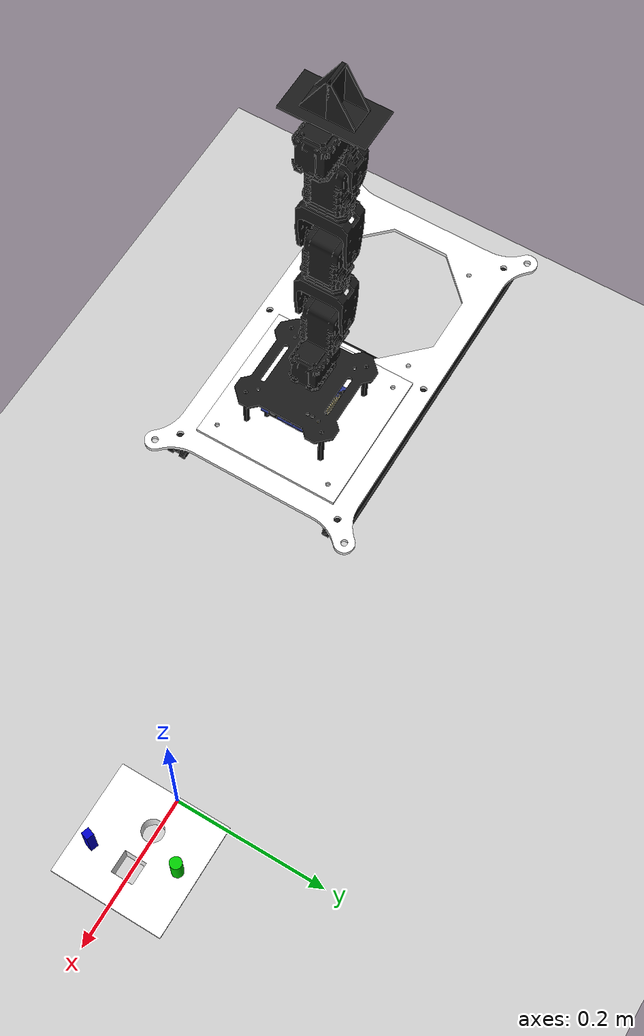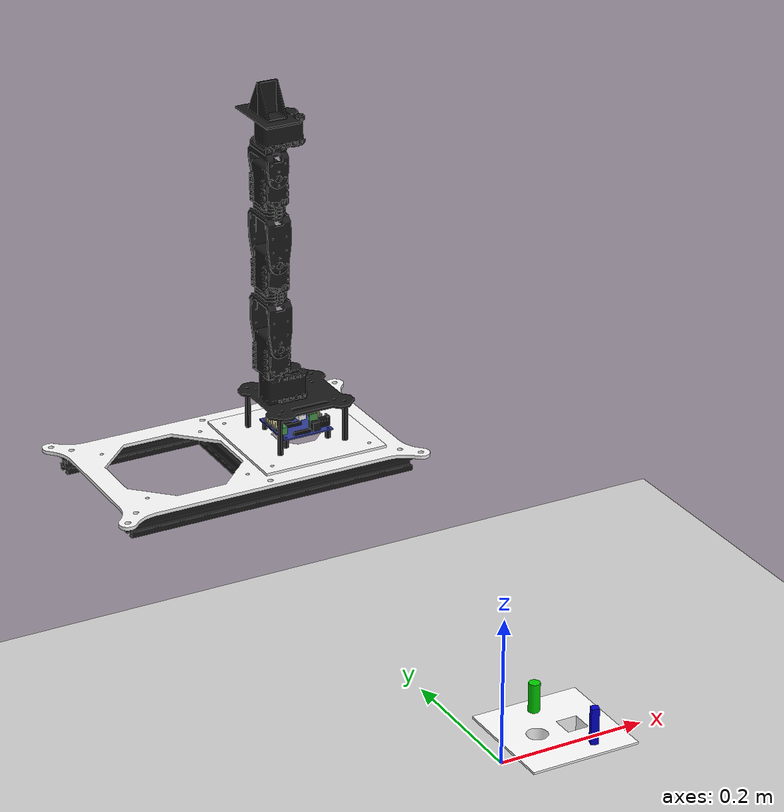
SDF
<sdf version="1.9">
 <world name="rover_peg_in_hole">
  <plugin filename="ignition-gazebo-physics-system" name="ignition::gazebo::systems::Physics"/>
  <physics name="dart_physics" type="dart">
   <max_step_size>0.002</max_step_size>
   <real_time_factor>1.0</real_time_factor>
  </physics>
  <gravity>0.0 0.0 -3.721</gravity>
  <scene><ambient>0 0 0</ambient><grid>false</grid></scene>
  <plugin filename="ignition-gazebo-user-commands-system" name="ignition::gazebo::systems::UserCommands"/>
  <plugin filename="ignition-gazebo-scene-broadcaster-system" name="ignition::gazebo::systems::SceneBroadcaster"/>
  <light type="directional" name="sun">
   <pose>0 0 10 0 0 0</pose>
   <diffuse>0.8 0.8 0.8 1</diffuse>
   <specular>0.2 0.2 0.2 1</specular>
   <attenuation>
    <range>1000</range>
    <constant>2.5</constant>
    <linear>0.01</linear>
    <quadratic>0.001</quadratic>
   </attenuation>
   <direction>0.25 -0.5 -0.5</direction>
  </light>
  <model name="ground">
   <static>true</static>
   <link name="ground_link">
    <collision name="ground_collision"><geometry><plane><size>2.0 2.0</size></plane></geometry></collision>
    <visual name="ground_visual"><geometry><plane><size>2.0 2.0</size></plane></geometry></visual>
   </link>
  </model>
  <include>
   <pose>-0.35 0 0.485 0 0 3.1416</pose>
   <uri>model://phantomx_pincher</uri>
   <plugin filename="ignition-gazebo-detachable-joint-system" name="ignition::gazebo::systems::DetachableJoint">
    <parent_link>phantomx_pincher_base_link</parent_link>
    <child_model>module_cover</child_model>
    <child_link>module_cover_link</child_link>
   </plugin>
  </include>
  <model name="module_cover">
   <pose relative_to="phantomx_pincher">0.075 0 0.024 0 0 0</pose>
   <link name="module_cover_link">
    <collision name="module_cover_collision">
     <geometry><mesh><uri>../assets/module_holes.stl</uri></mesh></geometry>
    </collision>
    <visual name="module_cover_visual">
     <geometry><mesh><uri>../assets/module_holes.stl</uri></mesh></geometry>
     <material><diffuse>1.0 1.0 1.0</diffuse><specular>0.1 0.1 0.1</specular></material>
    </visual>
    <inertial>
     <pose>0.0 0.0 -0.005 0 0 0</pose>
     <mass>0.04</mass>
     <inertia>
      <ixx>0.00000866667</ixx>
      <iyy>0.00007334667</iyy>
      <izz>0.00008134667</izz>
      <ixy>0.0</ixy>
      <ixz>0.0</ixz>
      <iyz>0.0</iyz>
     </inertia>
    </inertial>
   </link>
  </model>
  <model name="peg1">
   <static>false</static>
   <pose relative_to="phantomx_pincher">0.075 0.05 0.047 0 0 0</pose>
   <link name="peg1_link">
    <collision name="peg1_collision">
     <geometry><cylinder><length>0.04</length><radius>0.0075</radius></cylinder></geometry>
    </collision>
    <visual name="peg1_visual">
     <geometry><cylinder><length>0.04</length><radius>0.0075</radius></cylinder></geometry>
     <material><diffuse>0 0.8 0</diffuse><specular>0.2 0.2 0.2</specular></material>
    </visual>
    <inertial>
     <mass>0.015</mass>
     <inertia>
      <ixx>0.0000025859375</ixx>
      <iyy>0.0000025859375</iyy>
      <izz>0.0000011718750</izz>
      <ixy>0.0</ixy>
      <ixz>0.0</ixz>
      <iyz>0.0</iyz>
     </inertia>
    </inertial>
   </link>
  </model>
  <model name="peg2">
   <static>false</static>
   <pose relative_to="phantomx_pincher">0.1 -0.05 0.052 0 0 -0.32175</pose>
   <link name="peg2_link">
    <collision name="peg2_collision"><geometry><box><size>0.01 0.01 0.05</size></box></geometry></collision>
    <visual name="peg2_visual">
     <geometry><box><size>0.01 0.01 0.05</size></box></geometry>
     <material><diffuse>0 0 0.8</diffuse><specular>0.2 0.2 0.2</specular></material>
    </visual>
    <inertial>
     <mass>0.02</mass>
     <inertia>
      <ixx>0.00000520833</ixx>
      <iyy>0.00000520833</iyy>
      <izz>0.00000208333</izz>
      <ixy>0.0</ixy>
      <ixz>0.0</ixz>
      <iyz>0.0</iyz>
     </inertia>
    </inertial>
   </link>
  </model>
 </world>
</sdf>

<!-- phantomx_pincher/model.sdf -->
<sdf version='1.9'>
  <model name='phantomx_pincher'>
    <link name='phantomx_pincher_base_link'>
      <inertial>
        <pose>-0.01572806230265987 2.004116747357118e-05 0.02729107304682029 0 0 0</pose>
        <mass>0.78139802400654235</mass>
        <inertia>
          <ixx>0.0071530032060590169</ixx>
          <ixy>1.3358730550969931e-06</ixy>
          <ixz>0.00040468059007655802</ixz>
          <iyy>0.0046873478338086859</iyy>
          <iyz>-3.9397789863881159e-07</iyz>
          <izz>0.0108279546657306</izz>
        </inertia>
      </inertial>
      <collision name='phantomx_pincher_base_link_fixed_joint_lump__phantomx_pincher_task_board_link_collision'>
        <pose>0 0 0 0 0 0</pose>
        <geometry>
          <mesh>
            <scale>1 1 1</scale>
            <uri>meshes/collision/task_board.stl</uri>
          </mesh>
        </geometry>
        <surface>
          <contact>
            <ode/>
          </contact>
          <friction>
            <ode>
              <mu>1</mu>
              <mu2>1</mu2>
            </ode>
          </friction>
        </surface>
      </collision>
      <collision name='phantomx_pincher_base_link_fixed_joint_lump__phantomx_pincher_task_board_mount_link_collision_1'>
        <pose>-0.075 0 0.0255 0 0 1.570796326794896</pose>
        <geometry>
          <box>
            <size>0.148 0.148 0.003</size>
          </box>
        </geometry>
        <surface>
          <contact>
            <ode/>
          </contact>
          <friction>
            <ode>
              <mu>1</mu>
              <mu2>1</mu2>
            </ode>
          </friction>
        </surface>
      </collision>
      <collision name='phantomx_pincher_base_link_fixed_joint_lump__phantomx_pincher_base_mount_link_collision_2'>
        <pose>-0.075 0 0.051 0 0 1.570796326794896</pose>
        <geometry>
          <box>
            <size>0.104 0.104 0.048</size>
          </box>
        </geometry>
        <surface>
          <contact>
            <ode/>
          </contact>
          <friction>
            <ode>
              <mu>1</mu>
              <mu2>1</mu2>
            </ode>
          </friction>
        </surface>
      </collision>
      <collision name='phantomx_pincher_base_link_fixed_joint_lump__phantomx_pincher_arm_shoulder_pan_servo_link_collision_3'>
        <pose>-0.059 -3.469446951953614e-18 0.091 1.570796326794896 0 1.570796326794896</pose>
        <geometry>
          <box>
            <size>0.032 0.038 0.05</size>
          </box>
        </geometry>
        <surface>
          <contact>
            <ode/>
          </contact>
          <friction>
            <ode>
              <mu>1</mu>
              <mu2>1</mu2>
            </ode>
          </friction>
        </surface>
      </collision>
      <visual name='phantomx_pincher_base_link_fixed_joint_lump__phantomx_pincher_task_board_link_visual'>
        <pose>0 0 0 0 0 0</pose>
        <geometry>
          <mesh>
            <scale>1 1 1</scale>
            <uri>meshes/visual/task_board.dae</uri>
          </mesh>
        </geometry>
      </visual>
      <visual name='phantomx_pincher_base_link_fixed_joint_lump__phantomx_pincher_task_board_mount_link_visual_1'>
        <pose>-0.075 0 0.024 0 0 1.570796326794896</pose>
        <geometry>
          <mesh>
            <scale>1 1 1</scale>
            <uri>meshes/visual/task_board_module_phantomx_pincher_mount.dae</uri>
          </mesh>
        </geometry>
      </visual>
      <visual name='phantomx_pincher_base_link_fixed_joint_lump__phantomx_pincher_base_mount_link_visual_2'>
        <pose>-0.075 0 0.027 0 0 1.570796326794896</pose>
        <geometry>
          <mesh>
            <scale>1 1 1</scale>
            <uri>meshes/visual/phantomx_pincher_mount.dae</uri>
          </mesh>
        </geometry>
      </visual>
      <visual name='phantomx_pincher_base_link_fixed_joint_lump__phantomx_pincher_arm_shoulder_pan_servo_link_visual_3'>
        <pose>-0.0455 -6.938893903907228e-18 0.091 1.570796326794896 0 1.570796326794896</pose>
        <geometry>
          <mesh>
            <scale>1 1 1</scale>
            <uri>meshes/visual/ax12.dae</uri>
          </mesh>
        </geometry>
      </visual>
    </link>
    <joint name='phantomx_pincher_arm_shoulder_pan_joint' type='revolute'>
      <pose relative_to='phantomx_pincher_base_link'>-0.0455 -3.469446951953614e-18 0.11 -3.141592653589793 2.220446049250313e-16 -3.141592653589793</pose>
      <parent>phantomx_pincher_base_link</parent>
      <child>phantomx_pincher_arm_shoulder_pan_link</child>
      <axis>
        <xyz>0 0 -1</xyz>
        <limit>
          <lower>-2.617993877991494</lower>
          <upper>2.617993877991494</upper>
          <effort>30</effort>
          <velocity>1.570796326794897</velocity>
        </limit>
        <dynamics>
          <damping>1.3999999999999999</damping>
          <friction>0.02</friction>
          <spring_reference>0</spring_reference>
          <spring_stiffness>0</spring_stiffness>
        </dynamics>
      </axis>
      <physics>
        <ode>
          <limit>
            <cfm>0</cfm>
            <erp>0.20000000000000001</erp>
          </limit>
        </ode>
      </physics>
    </joint>
    <link name='phantomx_pincher_arm_shoulder_pan_link'>
      <pose relative_to='phantomx_pincher_arm_shoulder_pan_joint'>0 0 0 0 0 0</pose>
      <inertial>
        <pose>5.595287355839478e-07 0.0003919568807741019 -0.0205493913639223 0 0 0</pose>
        <mass>0.087772482279434863</mass>
        <inertia>
          <ixx>2.633487857526346e-05</ixx>
          <ixy>6.8175816151448447e-10</ixy>
          <ixz>-2.069705364080512e-10</ixz>
          <iyy>2.2601091776010151e-05</iyy>
          <iyz>-3.0157456879133362e-07</iyz>
          <izz>1.3864477057815019e-05</izz>
        </inertia>
      </inertial>
      <collision name='phantomx_pincher_arm_shoulder_pan_link_collision'>
        <pose>0 0 -0.0045 0 0 0</pose>
        <geometry>
          <box>
            <size>0.025 0.038 0.009</size>
          </box>
        </geometry>
        <surface>
          <contact>
            <ode/>
          </contact>
          <friction>
            <ode>
              <mu>1</mu>
              <mu2>1</mu2>
            </ode>
          </friction>
        </surface>
      </collision>
      <collision name='phantomx_pincher_arm_shoulder_pan_link_fixed_joint_lump__phantomx_pincher_arm_shoulder_lift_servo_link_collision_1'>
        <pose>-1.653273178848927e-18 0 -0.02150000000000001 3.141592653589793 1.224646799147353e-16 3.141592653589793</pose>
        <geometry>
          <box>
            <size>0.032 0.038 0.05</size>
          </box>
        </geometry>
        <surface>
          <contact>
            <ode/>
          </contact>
          <friction>
            <ode>
              <mu>1</mu>
              <mu2>1</mu2>
            </ode>
          </friction>
        </surface>
      </collision>
      <visual name='phantomx_pincher_arm_shoulder_pan_link_visual'>
        <pose>0 0 0 0 0 0</pose>
        <geometry>
          <mesh>
            <scale>1 1 1</scale>
            <uri>meshes/visual/f3.dae</uri>
          </mesh>
        </geometry>
      </visual>
      <visual name='phantomx_pincher_arm_shoulder_pan_link_fixed_joint_lump__phantomx_pincher_arm_shoulder_lift_servo_link_visual_1'>
        <pose>0 0 -0.035 3.141592653589793 1.224646799147353e-16 3.141592653589793</pose>
        <geometry>
          <mesh>
            <scale>1 1 1</scale>
            <uri>meshes/visual/ax12.dae</uri>
          </mesh>
        </geometry>
      </visual>
    </link>
    <joint name='phantomx_pincher_arm_shoulder_lift_joint' type='revolute'>
      <pose relative_to='phantomx_pincher_arm_shoulder_pan_link'>0 0 -0.035 3.141592653589793 1.224646799147353e-16 3.141592653589793</pose>
      <parent>phantomx_pincher_arm_shoulder_pan_link</parent>
      <child>phantomx_pincher_arm_shoulder_lift_link</child>
      <axis>
        <xyz>0 1 0</xyz>
        <limit>
          <lower>-2.0943951023931948</lower>
          <upper>2.0943951023931948</upper>
          <effort>30</effort>
          <velocity>1.570796326794897</velocity>
        </limit>
        <dynamics>
          <damping>1.3999999999999999</damping>
          <friction>0.02</friction>
          <spring_reference>0</spring_reference>
          <spring_stiffness>0</spring_stiffness>
        </dynamics>
      </axis>
      <physics>
        <ode>
          <limit>
            <cfm>0</cfm>
            <erp>0.20000000000000001</erp>
          </limit>
        </ode>
      </physics>
    </joint>
    <link name='phantomx_pincher_arm_shoulder_lift_link'>
      <pose relative_to='phantomx_pincher_arm_shoulder_lift_joint'>0 0 0 0 0 0</pose>
      <inertial>
        <pose>-0.0001213773559064778 0.0002858868570510085 0.07133476832835256 0 0 0</pose>
        <mass>0.1235269029539826</mass>
        <inertia>
          <ixx>0.00011126590019944989</ixx>
          <ixy>-3.4505658476539801e-09</ixy>
          <ixz>4.0295345044288871e-07</ixz>
          <iyy>9.9172419902998133e-05</iyy>
          <iyz>-1.483690008628516e-07</iyz>
          <izz>2.7139002304225952e-05</izz>
        </inertia>
      </inertial>
      <collision name='phantomx_pincher_arm_shoulder_lift_link_collision'>
        <pose>0 0 0.0215 0 0 0</pose>
        <geometry>
          <box>
            <size>0.028 0.0485 0.065</size>
          </box>
        </geometry>
        <surface>
          <contact>
            <ode/>
          </contact>
          <friction>
            <ode>
              <mu>1</mu>
              <mu2>1</mu2>
            </ode>
          </friction>
        </surface>
      </collision>
      <collision name='phantomx_pincher_arm_shoulder_lift_link_fixed_joint_lump__phantomx_pincher_arm_shoulder_F10_0_link_collision_1'>
        <pose>0 0 0.0545 0 0 0</pose>
        <geometry>
          <box>
            <size>0.025 0.038 0.004</size>
          </box>
        </geometry>
        <surface>
          <contact>
            <ode/>
          </contact>
          <friction>
            <ode>
              <mu>1</mu>
              <mu2>1</mu2>
            </ode>
          </friction>
        </surface>
      </collision>
      <collision name='phantomx_pincher_arm_shoulder_lift_link_fixed_joint_lump__phantomx_pincher_arm_shoulder_F10_1_link_collision_2'>
        <pose>0 0 0.0585 0 0 0</pose>
        <geometry>
          <box>
            <size>0.025 0.038 0.004</size>
          </box>
        </geometry>
        <surface>
          <contact>
            <ode/>
          </contact>
          <friction>
            <ode>
              <mu>1</mu>
              <mu2>1</mu2>
            </ode>
          </friction>
        </surface>
      </collision>
      <collision name='phantomx_pincher_arm_shoulder_lift_link_fixed_joint_lump__phantomx_pincher_arm_shoulder_F10_2_link_collision_3'>
        <pose>0 0 0.0625 0 0 0</pose>
        <geometry>
          <box>
            <size>0.025 0.038 0.004</size>
          </box>
        </geometry>
        <surface>
          <contact>
            <ode/>
          </contact>
          <friction>
            <ode>
              <mu>1</mu>
              <mu2>1</mu2>
            </ode>
          </friction>
        </surface>
      </collision>
      <collision name='phantomx_pincher_arm_shoulder_lift_link_fixed_joint_lump__phantomx_pincher_arm_shoulder_F3_0_link_collision_4'>
        <pose>-5.510910596163089e-19 0 0.06900000000000001 3.141592653589793 1.224646799147353e-16 3.141592653589793</pose>
        <geometry>
          <box>
            <size>0.025 0.038 0.009</size>
          </box>
        </geometry>
        <surface>
          <contact>
            <ode/>
          </contact>
          <friction>
            <ode>
              <mu>1</mu>
              <mu2>1</mu2>
            </ode>
          </friction>
        </surface>
      </collision>
      <collision name='phantomx_pincher_arm_shoulder_lift_link_fixed_joint_lump__phantomx_pincher_arm_elbow_flex_servo_link_collision_5'>
        <pose>-9.797174393178831e-19 0 0.08600000000000001 0 -2.449293598294706e-16 0</pose>
        <geometry>
          <box>
            <size>0.032 0.038 0.05</size>
          </box>
        </geometry>
        <surface>
          <contact>
            <ode/>
          </contact>
          <friction>
            <ode>
              <mu>1</mu>
              <mu2>1</mu2>
            </ode>
          </friction>
        </surface>
      </collision>
      <visual name='phantomx_pincher_arm_shoulder_lift_link_visual'>
        <pose>0 0 0 0 0 0</pose>
        <geometry>
          <mesh>
            <scale>1 1 1</scale>
            <uri>meshes/visual/f4.dae</uri>
          </mesh>
        </geometry>
      </visual>
      <visual name='phantomx_pincher_arm_shoulder_lift_link_fixed_joint_lump__phantomx_pincher_arm_shoulder_F10_0_link_visual_1'>
        <pose>0 0 0.0545 0 0 0</pose>
        <geometry>
          <mesh>
            <scale>1 1 1</scale>
            <uri>meshes/visual/f10.dae</uri>
          </mesh>
        </geometry>
      </visual>
      <visual name='phantomx_pincher_arm_shoulder_lift_link_fixed_joint_lump__phantomx_pincher_arm_shoulder_F10_1_link_visual_2'>
        <pose>0 0 0.0585 0 0 0</pose>
        <geometry>
          <mesh>
            <scale>1 1 1</scale>
            <uri>meshes/visual/f10.dae</uri>
          </mesh>
        </geometry>
      </visual>
      <visual name='phantomx_pincher_arm_shoulder_lift_link_fixed_joint_lump__phantomx_pincher_arm_shoulder_F10_2_link_visual_3'>
        <pose>0 0 0.0625 0 0 0</pose>
        <geometry>
          <mesh>
            <scale>1 1 1</scale>
            <uri>meshes/visual/f10.dae</uri>
          </mesh>
        </geometry>
      </visual>
      <visual name='phantomx_pincher_arm_shoulder_lift_link_fixed_joint_lump__phantomx_pincher_arm_shoulder_F3_0_link_visual_4'>
        <pose>0 0 0.0645 3.141592653589793 1.224646799147353e-16 3.141592653589793</pose>
        <geometry>
          <mesh>
            <scale>1 1 1</scale>
            <uri>meshes/visual/f3.dae</uri>
          </mesh>
        </geometry>
      </visual>
      <visual name='phantomx_pincher_arm_shoulder_lift_link_fixed_joint_lump__phantomx_pincher_arm_elbow_flex_servo_link_visual_5'>
        <pose>-4.286263797015737e-18 0 0.09950000000000001 0 -2.449293598294706e-16 0</pose>
        <geometry>
          <mesh>
            <scale>1 1 1</scale>
            <uri>meshes/visual/ax12.dae</uri>
          </mesh>
        </geometry>
      </visual>
    </link>
    <joint name='phantomx_pincher_arm_elbow_flex_joint' type='revolute'>
      <pose relative_to='phantomx_pincher_arm_shoulder_lift_link'>-4.286263797015737e-18 0 0.09950000000000001 0 -2.449293598294706e-16 0</pose>
      <parent>phantomx_pincher_arm_shoulder_lift_link</parent>
      <child>phantomx_pincher_arm_elbow_flex_link</child>
      <axis>
        <xyz>0 1 0</xyz>
        <limit>
          <lower>-2.4260076602721181</lower>
          <upper>2.4260076602721181</upper>
          <effort>30</effort>
          <velocity>1.570796326794897</velocity>
        </limit>
        <dynamics>
          <damping>1.3999999999999999</damping>
          <friction>0.02</friction>
          <spring_reference>0</spring_reference>
          <spring_stiffness>0</spring_stiffness>
        </dynamics>
      </axis>
      <physics>
        <ode>
          <limit>
            <cfm>0</cfm>
            <erp>0.20000000000000001</erp>
          </limit>
        </ode>
      </physics>
    </joint>
    <link name='phantomx_pincher_arm_elbow_flex_link'>
      <pose relative_to='phantomx_pincher_arm_elbow_flex_joint'>0 0 0 0 0 0</pose>
      <inertial>
        <pose>-0.0001213773559064778 0.0002858868570510085 0.07133476832835256 0 0 0</pose>
        <mass>0.1235269029539826</mass>
        <inertia>
          <ixx>0.00011126590019944989</ixx>
          <ixy>-3.4505658476539801e-09</ixy>
          <ixz>4.0295345044288871e-07</ixz>
          <iyy>9.9172419902998133e-05</iyy>
          <iyz>-1.483690008628516e-07</iyz>
          <izz>2.7139002304225952e-05</izz>
        </inertia>
      </inertial>
      <collision name='phantomx_pincher_arm_elbow_flex_link_collision'>
        <pose>0 0 0.0215 0 0 0</pose>
        <geometry>
          <box>
            <size>0.028 0.0485 0.065</size>
          </box>
        </geometry>
        <surface>
          <contact>
            <ode/>
          </contact>
          <friction>
            <ode>
              <mu>1</mu>
              <mu2>1</mu2>
            </ode>
          </friction>
        </surface>
      </collision>
      <collision name='phantomx_pincher_arm_elbow_flex_link_fixed_joint_lump__phantomx_pincher_arm_elbow_F10_0_link_collision_1'>
        <pose>0 0 0.0545 0 0 0</pose>
        <geometry>
          <box>
            <size>0.025 0.038 0.004</size>
          </box>
        </geometry>
        <surface>
          <contact>
            <ode/>
          </contact>
          <friction>
            <ode>
              <mu>1</mu>
              <mu2>1</mu2>
            </ode>
          </friction>
        </surface>
      </collision>
      <collision name='phantomx_pincher_arm_elbow_flex_link_fixed_joint_lump__phantomx_pincher_arm_elbow_F10_1_link_collision_2'>
        <pose>0 0 0.0585 0 0 0</pose>
        <geometry>
          <box>
            <size>0.025 0.038 0.004</size>
          </box>
        </geometry>
        <surface>
          <contact>
            <ode/>
          </contact>
          <friction>
            <ode>
              <mu>1</mu>
              <mu2>1</mu2>
            </ode>
          </friction>
        </surface>
      </collision>
      <collision name='phantomx_pincher_arm_elbow_flex_link_fixed_joint_lump__phantomx_pincher_arm_elbow_F10_2_link_collision_3'>
        <pose>0 0 0.0625 0 0 0</pose>
        <geometry>
          <box>
            <size>0.025 0.038 0.004</size>
          </box>
        </geometry>
        <surface>
          <contact>
            <ode/>
          </contact>
          <friction>
            <ode>
              <mu>1</mu>
              <mu2>1</mu2>
            </ode>
          </friction>
        </surface>
      </collision>
      <collision name='phantomx_pincher_arm_elbow_flex_link_fixed_joint_lump__phantomx_pincher_arm_elbow_F3_0_link_collision_4'>
        <pose>-5.510910596163089e-19 0 0.06900000000000001 3.141592653589793 1.224646799147353e-16 3.141592653589793</pose>
        <geometry>
          <box>
            <size>0.025 0.038 0.009</size>
          </box>
        </geometry>
        <surface>
          <contact>
            <ode/>
          </contact>
          <friction>
            <ode>
              <mu>1</mu>
              <mu2>1</mu2>
            </ode>
          </friction>
        </surface>
      </collision>
      <collision name='phantomx_pincher_arm_elbow_flex_link_fixed_joint_lump__phantomx_pincher_arm_wrist_flex_servo_link_collision_5'>
        <pose>-9.797174393178831e-19 0 0.08600000000000001 0 -2.449293598294706e-16 0</pose>
        <geometry>
          <box>
            <size>0.032 0.038 0.05</size>
          </box>
        </geometry>
        <surface>
          <contact>
            <ode/>
          </contact>
          <friction>
            <ode>
              <mu>1</mu>
              <mu2>1</mu2>
            </ode>
          </friction>
        </surface>
      </collision>
      <visual name='phantomx_pincher_arm_elbow_flex_link_visual'>
        <pose>0 0 0 0 0 0</pose>
        <geometry>
          <mesh>
            <scale>1 1 1</scale>
            <uri>meshes/visual/f4.dae</uri>
          </mesh>
        </geometry>
      </visual>
      <visual name='phantomx_pincher_arm_elbow_flex_link_fixed_joint_lump__phantomx_pincher_arm_elbow_F10_0_link_visual_1'>
        <pose>0 0 0.0545 0 0 0</pose>
        <geometry>
          <mesh>
            <scale>1 1 1</scale>
            <uri>meshes/visual/f10.dae</uri>
          </mesh>
        </geometry>
      </visual>
      <visual name='phantomx_pincher_arm_elbow_flex_link_fixed_joint_lump__phantomx_pincher_arm_elbow_F10_1_link_visual_2'>
        <pose>0 0 0.0585 0 0 0</pose>
        <geometry>
          <mesh>
            <scale>1 1 1</scale>
            <uri>meshes/visual/f10.dae</uri>
          </mesh>
        </geometry>
      </visual>
      <visual name='phantomx_pincher_arm_elbow_flex_link_fixed_joint_lump__phantomx_pincher_arm_elbow_F10_2_link_visual_3'>
        <pose>0 0 0.0625 0 0 0</pose>
        <geometry>
          <mesh>
            <scale>1 1 1</scale>
            <uri>meshes/visual/f10.dae</uri>
          </mesh>
        </geometry>
      </visual>
      <visual name='phantomx_pincher_arm_elbow_flex_link_fixed_joint_lump__phantomx_pincher_arm_elbow_F3_0_link_visual_4'>
        <pose>0 0 0.0645 3.141592653589793 1.224646799147353e-16 3.141592653589793</pose>
        <geometry>
          <mesh>
            <scale>1 1 1</scale>
            <uri>meshes/visual/f3.dae</uri>
          </mesh>
        </geometry>
      </visual>
      <visual name='phantomx_pincher_arm_elbow_flex_link_fixed_joint_lump__phantomx_pincher_arm_wrist_flex_servo_link_visual_5'>
        <pose>-4.286263797015737e-18 0 0.09950000000000001 0 -2.449293598294706e-16 0</pose>
        <geometry>
          <mesh>
            <scale>1 1 1</scale>
            <uri>meshes/visual/ax12.dae</uri>
          </mesh>
        </geometry>
      </visual>
    </link>
    <joint name='phantomx_pincher_arm_wrist_flex_joint' type='revolute'>
      <pose relative_to='phantomx_pincher_arm_elbow_flex_link'>-4.286263797015737e-18 0 0.09950000000000001 0 -2.449293598294706e-16 0</pose>
      <parent>phantomx_pincher_arm_elbow_flex_link</parent>
      <child>phantomx_pincher_arm_wrist_flex_link</child>
      <axis>
        <xyz>0 1 0</xyz>
        <limit>
          <lower>-1.7104226669544429</lower>
          <upper>1.797689129554159</upper>
          <effort>30</effort>
          <velocity>1.570796326794897</velocity>
        </limit>
        <dynamics>
          <damping>1.3999999999999999</damping>
          <friction>0.02</friction>
          <spring_reference>0</spring_reference>
          <spring_stiffness>0</spring_stiffness>
        </dynamics>
      </axis>
      <physics>
        <ode>
          <limit>
            <cfm>0</cfm>
            <erp>0.20000000000000001</erp>
          </limit>
        </ode>
      </physics>
    </joint>
    <link name='phantomx_pincher_arm_wrist_flex_link'>
      <pose relative_to='phantomx_pincher_arm_wrist_flex_joint'>0 0 0 0 0 0</pose>
      <inertial>
        <pose>-0.009295957397333566 -5.451884850855395e-07 0.04302624855224318 0 0 0</pose>
        <mass>0.11408917431946421</mass>
        <inertia>
          <ixx>4.3988924081828188e-05</ixx>
          <ixy>-4.4638748338369969e-10</ixy>
          <ixz>3.4227778571969781e-06</ixz>
          <iyy>5.0046434742980048e-05</iyy>
          <iyz>-5.4239454493520664e-10</iyz>
          <izz>3.8009175095211288e-05</izz>
        </inertia>
      </inertial>
      <collision name='phantomx_pincher_arm_wrist_flex_link_collision'>
        <pose>0 0 0.00775 0 0 0</pose>
        <geometry>
          <box>
            <size>0.025 0.0485 0.0375</size>
          </box>
        </geometry>
        <surface>
          <contact>
            <ode/>
          </contact>
          <friction>
            <ode>
              <mu>1</mu>
              <mu2>1</mu2>
            </ode>
          </friction>
        </surface>
      </collision>
      <collision name='phantomx_pincher_arm_wrist_flex_link_fixed_joint_lump__phantomx_pincher_arm_wrist_F3_0_link_collision_1'>
        <pose>5.510910596163089e-19 6.748919021978358e-35 0.031 3.141592653589793 1.224646799147353e-16 1.224646799147353e-16</pose>
        <geometry>
          <box>
            <size>0.025 0.038 0.009</size>
          </box>
        </geometry>
        <surface>
          <contact>
            <ode/>
          </contact>
          <friction>
            <ode>
              <mu>1</mu>
              <mu2>1</mu2>
            </ode>
          </friction>
        </surface>
      </collision>
      <collision name='phantomx_pincher_arm_wrist_flex_link_fixed_joint_lump__phantomx_pincher_gripper_servo_link_collision_2'>
        <pose>-0.0135 -4.255358392814137e-18 0.0455 1.570796326794897 -1.665334536937735e-16 1.570796326794897</pose>
        <geometry>
          <box>
            <size>0.032 0.038 0.05</size>
          </box>
        </geometry>
        <surface>
          <contact>
            <ode/>
          </contact>
          <friction>
            <ode>
              <mu>1</mu>
              <mu2>1</mu2>
            </ode>
          </friction>
        </surface>
      </collision>
      <collision name='phantomx_pincher_arm_wrist_flex_link_fixed_joint_lump__phantomx_pincher_gripper_finger_base_link_collision_3'>
        <pose>1.184210884806328e-18 -6.938893903907228e-18 0.06449999999999999 0 -1.570796326794897 -6.283185307179586</pose>
        <geometry>
          <box>
            <size>0.002 0.075 0.04</size>
          </box>
        </geometry>
        <surface>
          <contact>
            <ode/>
          </contact>
          <friction>
            <ode>
              <mu>1</mu>
              <mu2>1</mu2>
            </ode>
          </friction>
        </surface>
      </collision>
      <visual name='phantomx_pincher_arm_wrist_flex_link_visual'>
        <pose>0 0 0 0 0 0</pose>
        <geometry>
          <mesh>
            <scale>1 1 1</scale>
            <uri>meshes/visual/f2.dae</uri>
          </mesh>
        </geometry>
      </visual>
      <visual name='phantomx_pincher_arm_wrist_flex_link_fixed_joint_lump__phantomx_pincher_arm_wrist_F3_0_link_visual_1'>
        <pose>0 0 0.0265 3.141592653589793 1.224646799147353e-16 1.224646799147353e-16</pose>
        <geometry>
          <mesh>
            <scale>1 1 1</scale>
            <uri>meshes/visual/f3.dae</uri>
          </mesh>
        </geometry>
      </visual>
      <visual name='phantomx_pincher_arm_wrist_flex_link_fixed_joint_lump__phantomx_pincher_gripper_servo_link_visual_2'>
        <pose>2.326828918379971e-18 2.84954358705753e-34 0.0455 1.570796326794897 -1.665334536937735e-16 1.570796326794897</pose>
        <geometry>
          <mesh>
            <scale>1 1 1</scale>
            <uri>meshes/visual/ax12.dae</uri>
          </mesh>
        </geometry>
      </visual>
      <visual name='phantomx_pincher_arm_wrist_flex_link_fixed_joint_lump__phantomx_pincher_gripper_finger_base_link_visual_3'>
        <pose>1.184210884806328e-18 -6.938893903907228e-18 0.06449999999999999 0 -1.570796326794897 -6.283185307179586</pose>
        <geometry>
          <mesh>
            <scale>1 1 1</scale>
            <uri>meshes/visual/gripper_base.dae</uri>
          </mesh>
        </geometry>
      </visual>
    </link>
    <joint name='phantomx_pincher_gripper_finger1_joint' type='prismatic'>
      <pose relative_to='phantomx_pincher_arm_wrist_flex_link'>-1.366750967786769e-18 0.01149999999999998 0.08349999999999999 -1.915538118220197e-16 -1.570092458683776e-16 1.570796326794897</pose>
      <parent>phantomx_pincher_arm_wrist_flex_link</parent>
      <child>phantomx_pincher_gripper_finger1_link</child>
      <axis>
        <xyz>1 0 0</xyz>
        <limit>
          <lower>0.001</lower>
          <upper>0.015800000000000002</upper>
          <effort>30</effort>
          <velocity>0.01</velocity>
        </limit>
        <dynamics>
          <damping>1.8</damping>
          <friction>0.059999999999999998</friction>
          <spring_reference>0</spring_reference>
          <spring_stiffness>0</spring_stiffness>
        </dynamics>
      </axis>
      <physics>
        <ode>
          <limit>
            <cfm>0</cfm>
            <erp>0.20000000000000001</erp>
          </limit>
        </ode>
      </physics>
    </joint>
    <link name='phantomx_pincher_gripper_finger1_link'>
      <pose relative_to='phantomx_pincher_gripper_finger1_joint'>0 0 0 0 0 0</pose>
      <inertial>
        <pose>-0.00607194 -4.42132e-19 -0.00471261 0 0 0</pose>
        <mass>0.0098432567432967123</mass>
        <inertia>
          <ixx>1.8229100836948671e-06</ixx>
          <ixy>-2.7975028993735179e-23</ixy>
          <ixz>3.498974201392864e-07</ixz>
          <iyy>1.5955459106765571e-06</iyy>
          <iyz>4.7709447971282439e-23</iyz>
          <izz>1.0262210845211419e-06</izz>
        </inertia>
      </inertial>
      <collision name='phantomx_pincher_gripper_finger1_link_collision'>
        <pose>0 0 0 0 0 0</pose>
        <geometry>
          <mesh>
            <scale>1 1 1</scale>
            <uri>meshes/collision/finger.stl</uri>
          </mesh>
        </geometry>
        <surface>
          <contact>
            <ode/>
          </contact>
          <friction>
            <ode>
              <mu>1</mu>
              <mu2>1</mu2>
            </ode>
          </friction>
        </surface>
      </collision>
      <visual name='phantomx_pincher_gripper_finger1_link_visual'>
        <pose>0 0 0 0 0 0</pose>
        <geometry>
          <mesh>
            <scale>1 1 1</scale>
            <uri>meshes/visual/finger.dae</uri>
          </mesh>
        </geometry>
      </visual>
    </link>
    <joint name='phantomx_pincher_gripper_finger2_joint' type='prismatic'>
      <pose relative_to='phantomx_pincher_arm_wrist_flex_link'>-1.152148543713068e-18 -0.01150000000000001 0.08349999999999999 3.454456595364222e-17 1.570092458683775e-16 -1.570796326794896</pose>
      <parent>phantomx_pincher_arm_wrist_flex_link</parent>
      <child>phantomx_pincher_gripper_finger2_link</child>
      <axis>
        <xyz>1 0 0</xyz>
        <limit>
          <lower>0.001</lower>
          <upper>0.015800000000000002</upper>
          <effort>30</effort>
          <velocity>0.01</velocity>
        </limit>
        <dynamics>
          <damping>1.8</damping>
          <friction>0.059999999999999998</friction>
          <spring_reference>0</spring_reference>
          <spring_stiffness>0</spring_stiffness>
        </dynamics>
      </axis>
      <physics>
        <ode>
          <limit>
            <cfm>0</cfm>
            <erp>0.20000000000000001</erp>
          </limit>
        </ode>
      </physics>
    </joint>
    <link name='phantomx_pincher_gripper_finger2_link'>
      <pose relative_to='phantomx_pincher_gripper_finger2_joint'>0 0 0 0 0 0</pose>
      <inertial>
        <pose>-0.00607194 -4.42132e-19 -0.00471261 0 0 0</pose>
        <mass>0.0098432567432967123</mass>
        <inertia>
          <ixx>1.8229100836948671e-06</ixx>
          <ixy>-2.7975028993735179e-23</ixy>
          <ixz>3.498974201392864e-07</ixz>
          <iyy>1.5955459106765571e-06</iyy>
          <iyz>4.7709447971282439e-23</iyz>
          <izz>1.0262210845211419e-06</izz>
        </inertia>
      </inertial>
      <collision name='phantomx_pincher_gripper_finger2_link_collision'>
        <pose>0 0 0 0 0 0</pose>
        <geometry>
          <mesh>
            <scale>1 1 1</scale>
            <uri>meshes/collision/finger.stl</uri>
          </mesh>
        </geometry>
        <surface>
          <contact>
            <ode/>
          </contact>
          <friction>
            <ode>
              <mu>1</mu>
              <mu2>1</mu2>
            </ode>
          </friction>
        </surface>
      </collision>
      <visual name='phantomx_pincher_gripper_finger2_link_visual'>
        <pose>0 0 0 0 0 0</pose>
        <geometry>
          <mesh>
            <scale>1 1 1</scale>
            <uri>meshes/visual/finger.dae</uri>
          </mesh>
        </geometry>
      </visual>
    </link>
    <static>false</static>
    <plugin name='ign_ros2_control::IgnitionROS2ControlPlugin' filename='ign_ros2_control-system'>
      <parameters>/root/ws/install/share/phantomx_pincher_moveit_config/config/controllers_effort.yaml</parameters>
    </plugin>
  </model>
</sdf>
